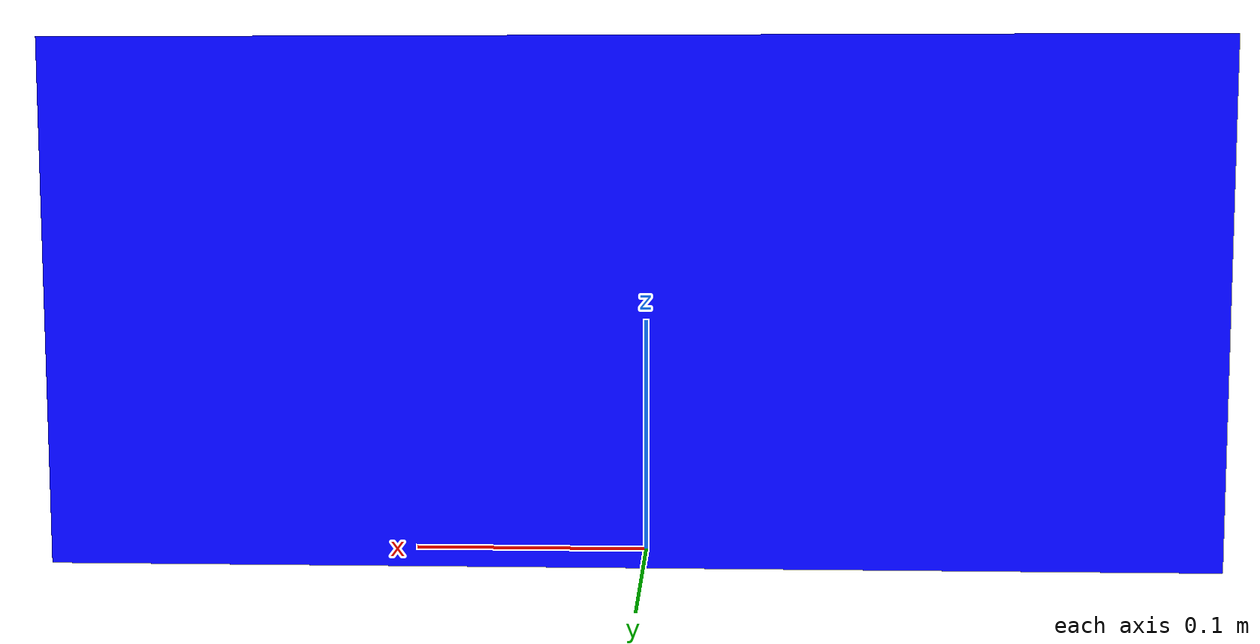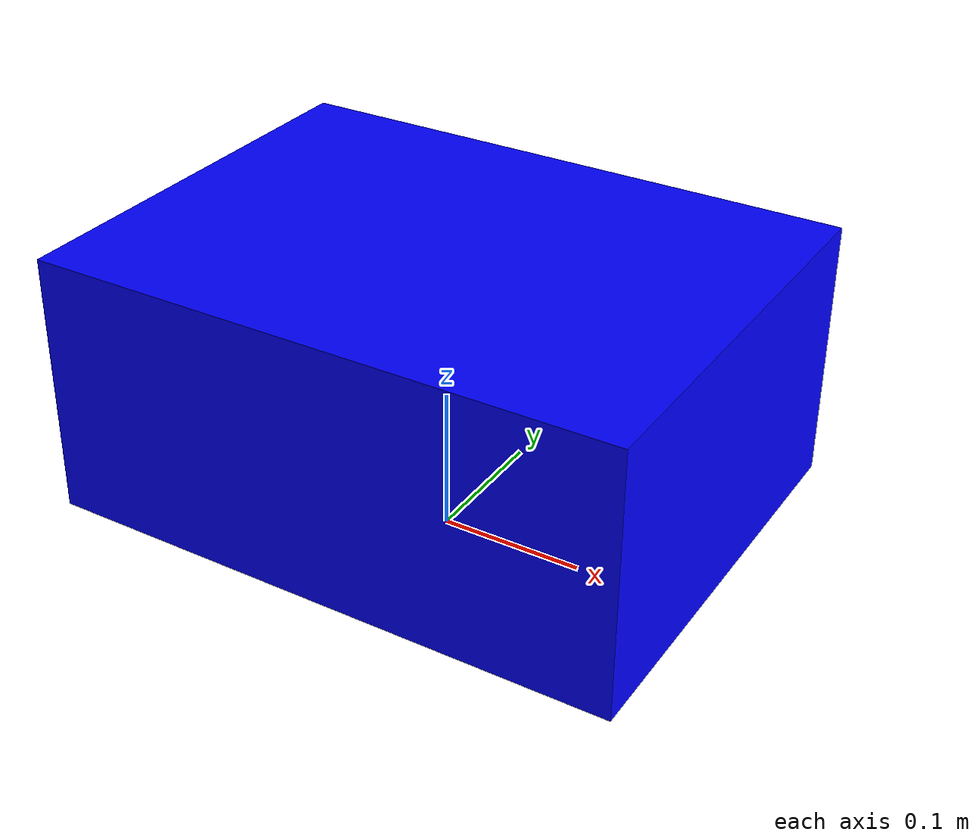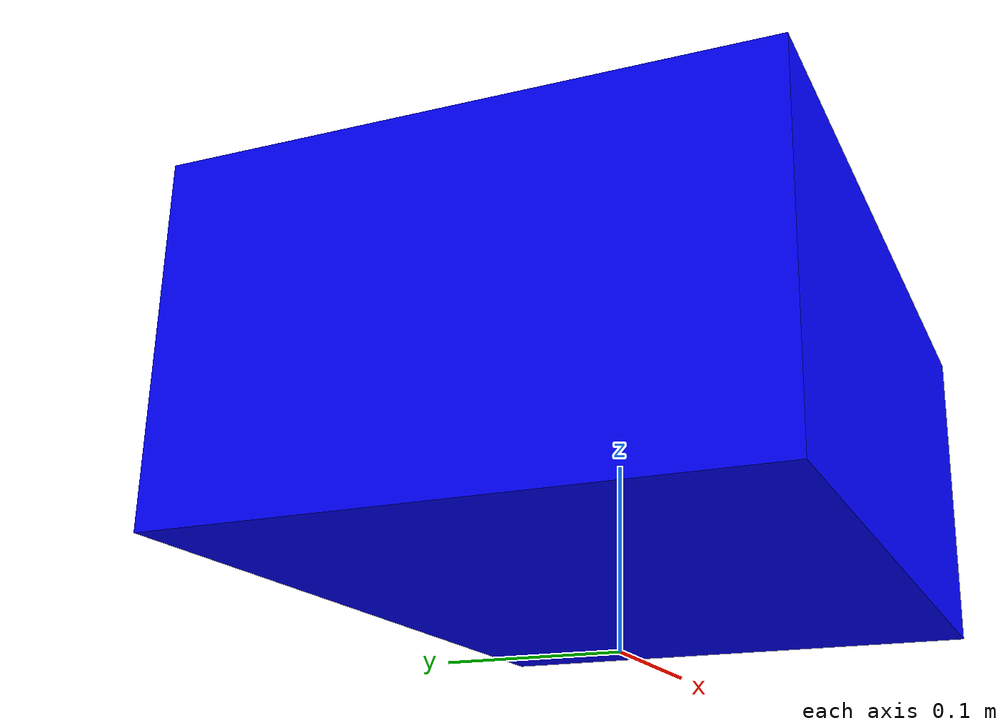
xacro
<?xml version="1.0" encoding="utf-8"?>
<!-- 汽车主体 xacro 文件 -->

<robot xmlns:xacro="http://www.ros.org/wiki/xacro">

  <!-- 定义材料 -->
  <material name="white">
    <color rgba="1 1 1 1" />
  </material>

  <material name="blue">
    <color rgba="0 0 1 1" />
  </material>

  <material name="black">
    <color rgba="0 0 0 1" />
  </material>

  <!-- base_footprint 虚拟链接 - 用于定位机器人在地面上的位置 -->
  <link name="base_footprint" />

  <!-- base_footprint 到 base_link 的固定关节 -->
  <joint name="base_footprint_joint" type="fixed">
    <origin xyz="0 0 0.12" rpy="0 0 0" />
    <parent link="base_footprint" />
    <child link="base_link" />
  </joint>

  <!-- 主体链接 -->
  <link name="base_link">
    <inertial>
      <origin xyz="0 0 -0.09" rpy="0 0 0" />
      <mass value="5.0" />
      <inertia
        ixx="0.2"
        ixy="0"
        ixz="0"
        iyy="0.15"
        iyz="0"
        izz="0.25" />
    </inertial>
    <visual>
      <origin xyz="0 0 0" rpy="0 0 0" />
      <geometry>
        <box size="0.4 0.3 0.18" />
      </geometry>
      <material name="blue" />
    </visual>
    <collision>
      <origin xyz="0 0 0" rpy="0 0 0" />
      <geometry>
        <box size="0.4 0.3 0.18" />
      </geometry>
    </collision>
  </link>

  <!-- Gazebo 标签 -->
  <gazebo reference="base_link">
    <material>Gazebo/Blue</material>
    <mu1>0.3</mu1>
    <mu2>0.3</mu2>
    <kp>1000000.0</kp>
    <kd>100.0</kd>
  </gazebo>

</robot>
